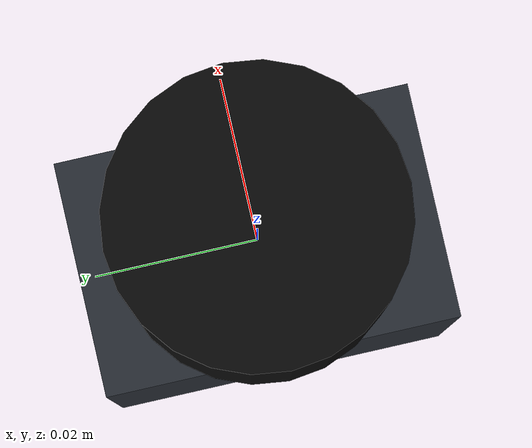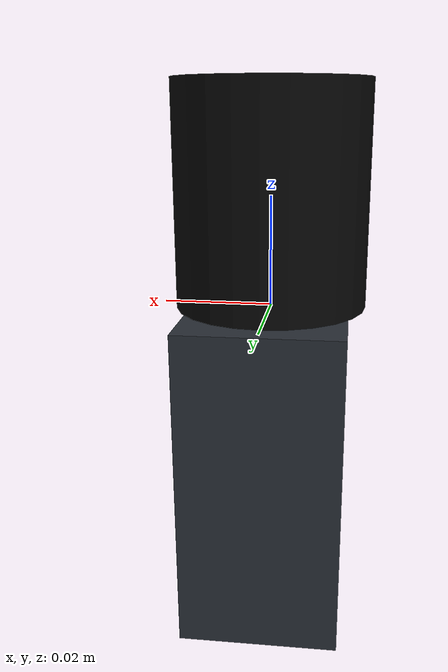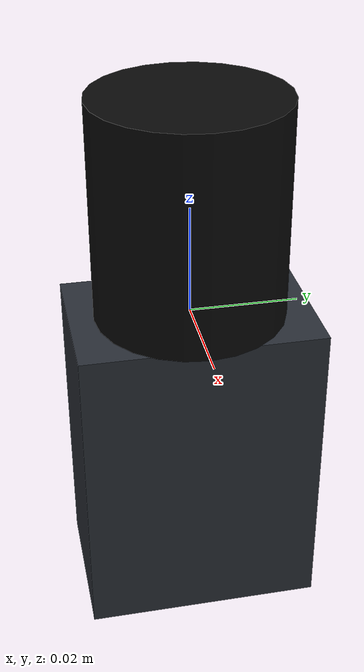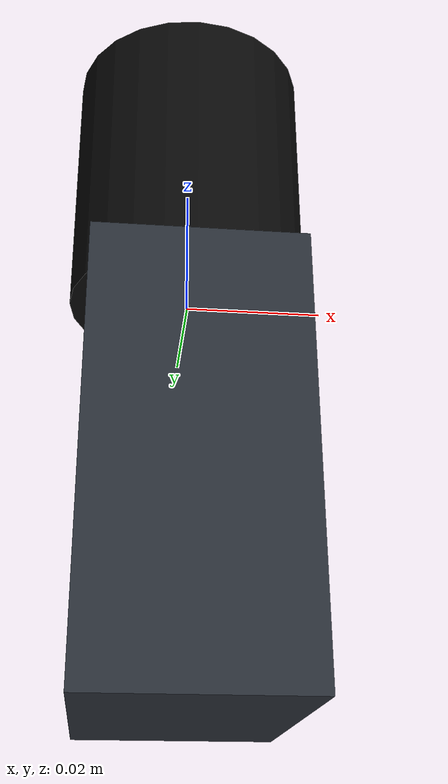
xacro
<?xml version="1.0"?>
<robot xmlns:xacro="http://ros.org/wiki/xacro" name="mv_ch100_60um">
  <!-- Body dimensions/mass from datasheet. Lens envelope and mass are estimates. -->
  <link name="camera_link">
    <inertial>
      <origin xyz="0 0 -0.011"/>
      <mass value="0.193"/>
      <inertia ixx="0.00014" ixy="0" ixz="0" iyy="0.00013" iyz="0" izz="0.00004"/>
    </inertial>
    <visual>
      <origin xyz="0 0 -0.0295"/>
      <geometry><box size="0.029 0.044 0.059"/></geometry>
      <material name="hikrobot_body"><color rgba="0.16 0.18 0.21 1"/></material>
    </visual>
    <collision>
      <origin xyz="0 0 -0.0295"/>
      <geometry><box size="0.029 0.044 0.059"/></geometry>
    </collision>
    <visual>
      <origin xyz="0 0 0.02"/>
      <geometry><cylinder radius="0.0175" length="0.04"/></geometry>
      <material name="c_mount_lens"><color rgba="0.035 0.035 0.035 1"/></material>
    </visual>
    <collision>
      <origin xyz="0 0 0.02"/>
      <geometry><cylinder radius="0.0175" length="0.04"/></geometry>
    </collision>
  </link>
  <!-- Ideal pinhole at approximate front of the unspecified 12 mm lens. -->
  <link name="camera_optical_frame"/>
  <joint name="camera_optical_joint" type="fixed">
    <parent link="camera_link"/><child link="camera_optical_frame"/>
    <origin xyz="0 0 0.04" rpy="0 0 0"/>
  </joint>
  <gazebo reference="camera_optical_frame">
    <sensor name="mv_ch100_60um" type="camera">
      <!-- Gazebo +X-forward camera to ROS +Z-forward optical convention. -->
      <pose>0 0 0 0 -1.5707963267948966 1.5707963267948966</pose>
      <always_on>true</always_on><update_rate>36</update_rate>
      <topic>/camera/image_raw</topic><gz_frame_id>camera_optical_frame</gz_frame_id>
      <camera>
        <horizontal_fov>${2 * atan(4096 * 0.00345 / (2 * 12))}</horizontal_fov>
        <image><width>4096</width><height>2460</height><format>L8</format></image>
        <clip><near>0.01</near><far>100</far></clip>
      </camera>
    </sensor>
  </gazebo>
</robot>
